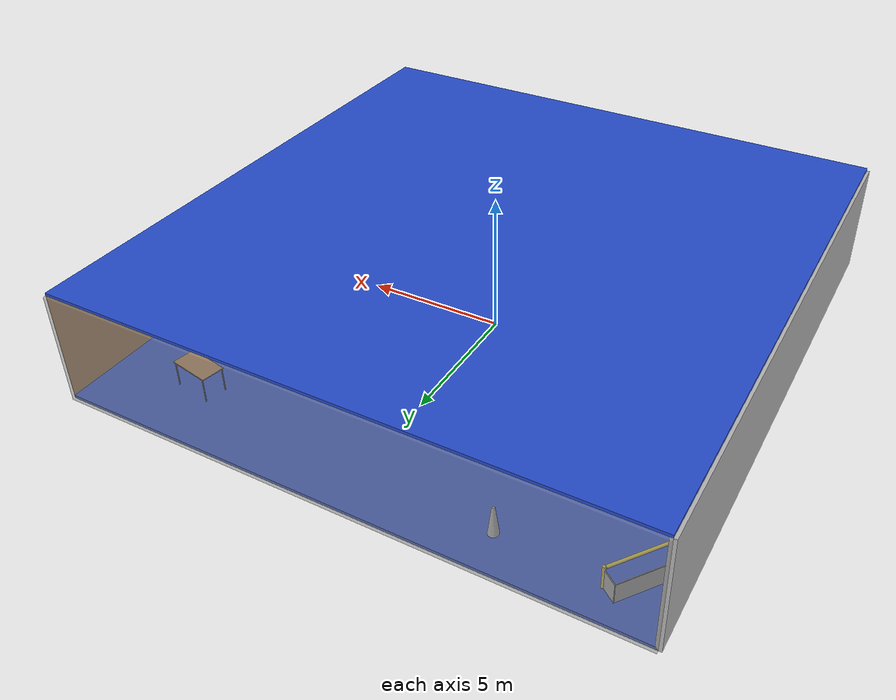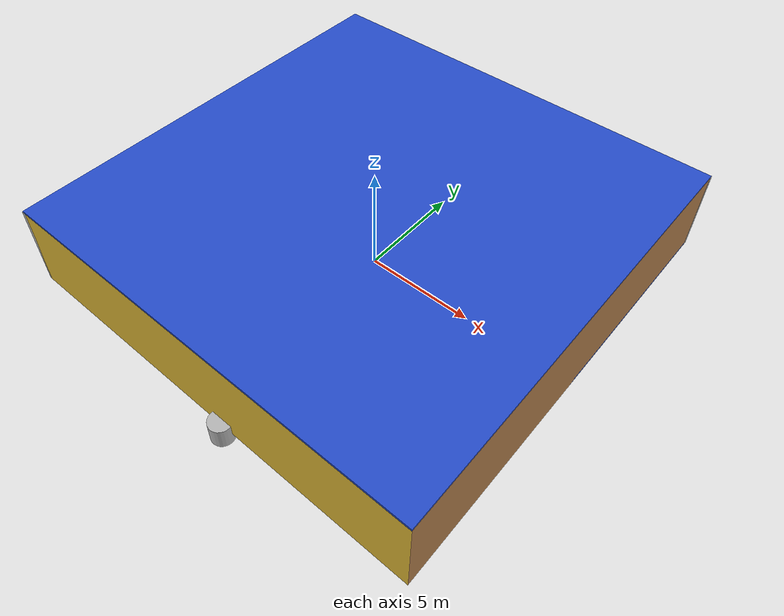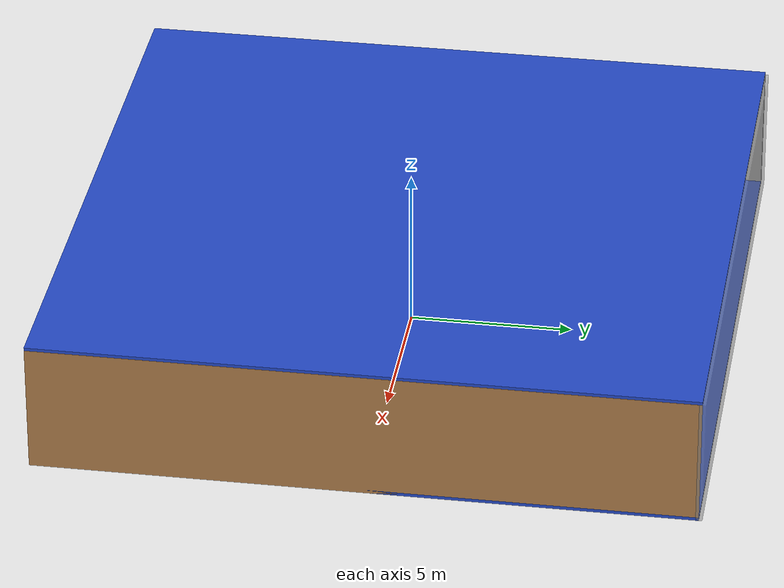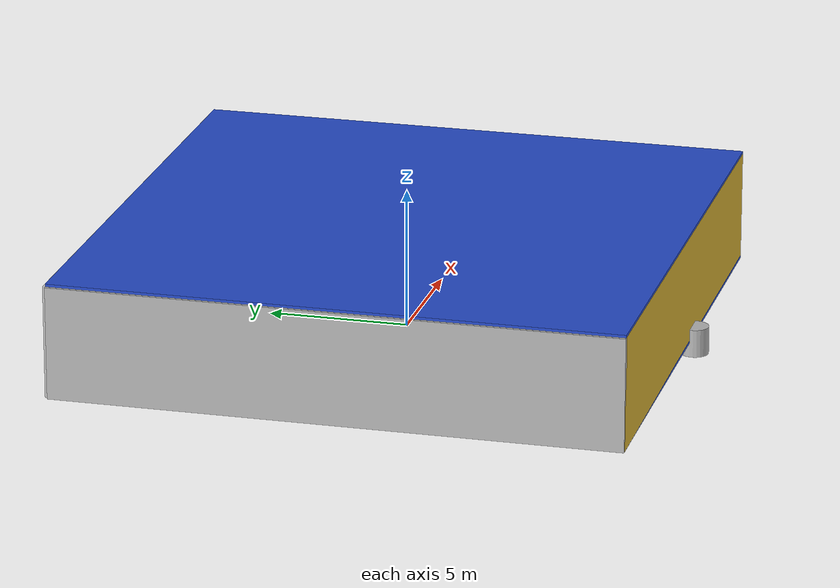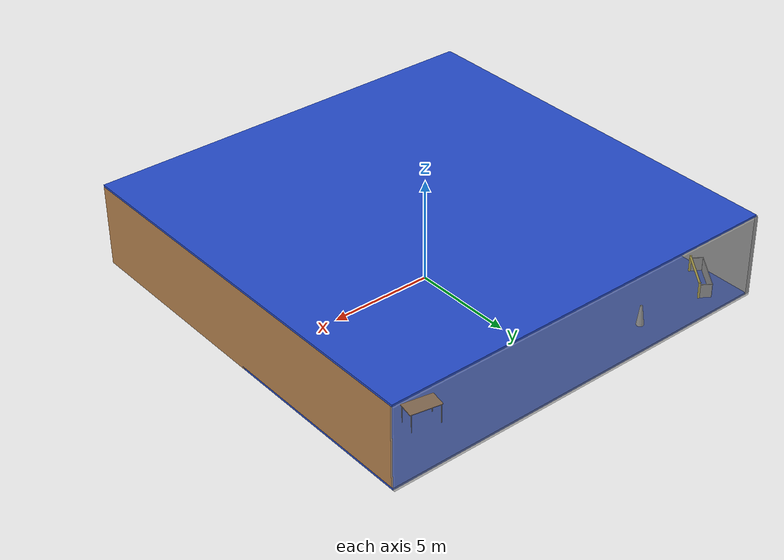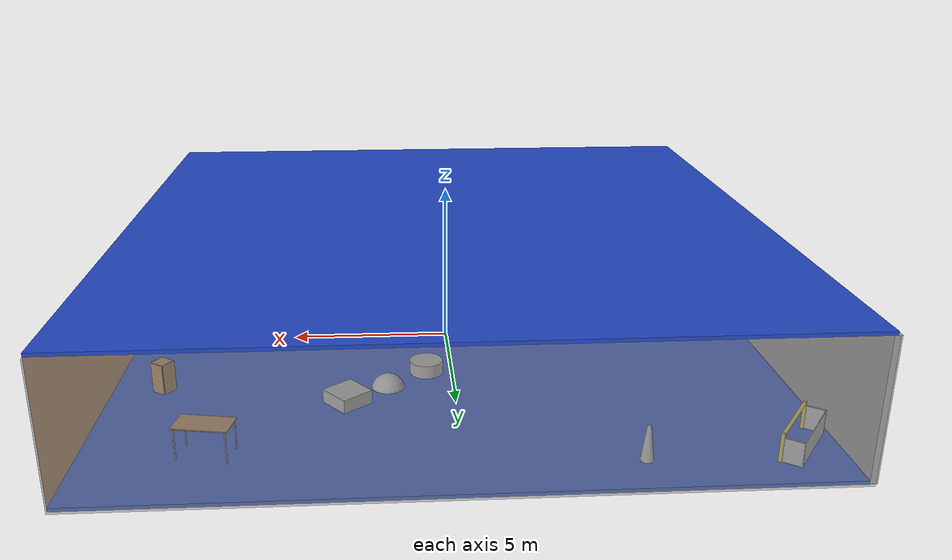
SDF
<sdf version="1.4">
 <world name="default">
  <physics type="ode">
   <max_step_size>0.001</max_step_size>
   <real_time_factor>1</real_time_factor>
   <real_time_update_rate>1000</real_time_update_rate>
   <gravity>0 0 -9.8</gravity>
  </physics>
  <scene><ambient>0.4 0.4 0.4 1</ambient><background>0.7 0.7 0.7 1</background><shadows>1</shadows></scene>
  <model name="Surrounding">
   <static>1</static>
   <link name="Ceiling">
    <collision name="Ceiling_Collision"><geometry><box><size>20 20 0.1</size></box></geometry></collision>
    <visual name="Ceiling_Visual">
     <geometry><box><size>20 20 0.1</size></box></geometry>
     <material>
      <script><uri>file://media/materials/scripts/gazebo.material</uri><name>Gazebo/Blue</name></script>
     </material>
    </visual>
    <pose>0 0 4.05 0 0 0</pose>
   </link>
   <link name="Wall_South">
    <collision name="Wall_South_Collision">
     <geometry><box><size>20 0 4</size></box></geometry>
     <pose>0 0 2 0 -0 0</pose>
    </collision>
    <visual name="Wall_South_Visual">
     <pose>0 0 2 0 -0 0</pose>
     <geometry><box><size>20 0 4</size></box></geometry>
     <material>
      <script><uri>file://media/materials/scripts/gazebo.material</uri><name>Gazebo/Gold</name></script>
     </material>
    </visual>
    <velocity_decay><linear>0</linear><angular>0</angular></velocity_decay>
    <pose>0 -10 0 0 -0 0</pose>
   </link>
   <link name="Wall_East">
    <collision name="Wall_21_Collision">
     <geometry><box><size>20 0 4</size></box></geometry>
     <pose>0 0 2 0 -0 0</pose>
    </collision>
    <visual name="Wall_21_Visual">
     <pose>0 0 2 0 -0 0</pose>
     <geometry><box><size>20 0 4</size></box></geometry>
     <material>
      <script><uri>file://media/materials/scripts/gazebo.material</uri><name>Gazebo/Wood</name></script>
     </material>
    </visual>
    <velocity_decay><linear>0</linear><angular>0</angular></velocity_decay>
    <pose>10 0 0 0 -0 1.5708</pose>
   </link>
   <link name="Wall_North">
    <collision name="Wall_22_Collision">
     <geometry><box><size>20 0.2 4</size></box></geometry>
     <pose>0 0 2 0 -0 0</pose>
    </collision>
    <visual name="Wall_22_Visual">
     <pose>0 0 2 0 -0 0</pose>
     <geometry><box><size>20 0.2 4</size></box></geometry>
     <material>
      <script><uri>file://media/materials/scripts/gazebo.material</uri><name>Gazebo/GreyTransparent</name></script>
     </material>
    </visual>
    <velocity_decay><linear>0</linear><angular>0</angular></velocity_decay>
    <pose>0 10 0 0 -0 0</pose>
   </link>
   <link name="Wall_West">
    <collision name="Wall_23_Collision">
     <geometry><box><size>20 0.2 4</size></box></geometry>
     <pose>0 0 2 0 -0 0</pose>
    </collision>
    <visual name="Wall_23_Visual">
     <pose>0 0 2 0 -0 0</pose>
     <geometry><box><size>20 0.2 4</size></box></geometry>
     <material>
      <script><uri>file://media/materials/scripts/gazebo.material</uri><name>Gazebo/PioneerBody</name></script>
     </material>
    </visual>
    <velocity_decay><linear>0</linear><angular>0</angular></velocity_decay>
    <pose>-10 0 0 0 0 -1.5708</pose>
   </link>
   <link name="Ground_link">
    <collision name="collision">
     <pose>0 0 .05 0 -0 0</pose>
     <geometry><box><size>20 20 0.1</size></box></geometry>
    </collision>
    <visual name="visual">
     <pose>0 0 .05 0 -0 0</pose>
     <geometry><box><size>20 20 0.1</size></box></geometry>
     <material>
      <script><uri>file://media/materials/scripts/gazebo.material</uri><name>Gazebo/BlueGlow</name></script>
     </material>
    </visual>
   </link>
   <static>1</static>
  </model>
  <spherical_coordinates>
   <surface_model>EARTH_WGS84</surface_model>
   <latitude_deg>0</latitude_deg>
   <longitude_deg>0</longitude_deg>
   <elevation>0</elevation>
   <heading_deg>0</heading_deg>
  </spherical_coordinates>
  <light name="lightball_0" type="diffuse">
   <diffuse>0.8 0.8 0.8 1</diffuse>
   <specular>0.2 0.2 0.2 1</specular>
   <attenuation>
    <range>100</range>
    <constant>0.7</constant>
    <linear>0.01</linear>
    <quadratic>0.001</quadratic>
   </attenuation>
   <direction>-0.5 0.1 -0.9</direction>
   <pose>-5.59700836795 0.626032234926 3.66191324475 0 0 0</pose>
  </light>
  <light name="lightball_1" type="diffuse">
   <diffuse>0.8 0.8 0.8 1</diffuse>
   <specular>0.2 0.2 0.2 1</specular>
   <attenuation>
    <range>100</range>
    <constant>0.7</constant>
    <linear>0.01</linear>
    <quadratic>0.001</quadratic>
   </attenuation>
   <direction>-0.5 0.1 -0.9</direction>
   <pose>9.02664751498 9.05347765151 3.84397542428 0 0 0</pose>
  </light>
  <light name="lightball_2" type="diffuse">
   <diffuse>0.8 0.8 0.8 1</diffuse>
   <specular>0.2 0.2 0.2 1</specular>
   <attenuation>
    <range>100</range>
    <constant>0.7</constant>
    <linear>0.01</linear>
    <quadratic>0.001</quadratic>
   </attenuation>
   <direction>-0.5 0.1 -0.9</direction>
   <pose>5.7213927226 -7.82872720752 2.5563557867 0 0 0</pose>
  </light>
  <light name="lightball_3" type="diffuse">
   <diffuse>0.8 0.8 0.8 1</diffuse>
   <specular>0.2 0.2 0.2 1</specular>
   <attenuation>
    <range>100</range>
    <constant>0.7</constant>
    <linear>0.01</linear>
    <quadratic>0.001</quadratic>
   </attenuation>
   <direction>-0.5 0.1 -0.9</direction>
   <pose>0.339997044067 -9.44505210884 3.62707724063 0 0 0</pose>
  </light>
  <light name="lightball_4" type="diffuse">
   <diffuse>0.8 0.8 0.8 1</diffuse>
   <specular>0.2 0.2 0.2 1</specular>
   <attenuation>
    <range>100</range>
    <constant>0.7</constant>
    <linear>0.01</linear>
    <quadratic>0.001</quadratic>
   </attenuation>
   <direction>-0.5 0.1 -0.9</direction>
   <pose>3.14395380802 3.1817193486 3.75739755223 0 0 0</pose>
  </light>
  <light name="lightball_5" type="diffuse">
   <diffuse>0.8 0.8 0.8 1</diffuse>
   <specular>0.2 0.2 0.2 1</specular>
   <attenuation>
    <range>100</range>
    <constant>0.7</constant>
    <linear>0.01</linear>
    <quadratic>0.001</quadratic>
   </attenuation>
   <direction>-0.5 0.1 -0.9</direction>
   <pose>2.25392600653 -4.07778272125 3.22393559349 0 0 0</pose>
  </light>
  <include><uri>model://table</uri><pose>-8.35748346379 -3.85569490936 0 0 0 0.489981527627</pose></include>
  <include>
   <uri>model://robocup_3Dsim_goal</uri>
   <pose>-8.39831405939 -2.05394725607 0 0 0 0.0625550736789</pose>
  </include>
  <include>
   <uri>model://robocup_3Dsim_goal</uri>
   <pose>-8.66237500134 8.09960643175 0 0 0 2.50078345647</pose>
  </include>
  <include>
   <uri>model://construction_cone</uri>
   <pose>-4.64904454827 8.67784905933 0 0 0 0.597615957941</pose>
  </include>
  <include>
   <uri>model://textured_shapes</uri>
   <pose>1.43802807275 -8.61308519528 0 0 0 2.95666133879</pose>
  </include>
  <include>
   <uri>model://textured_shapes</uri>
   <pose>1.6281980404 -4.76300689565 0 0 0 2.07527217394</pose>
  </include>
  <include>
   <uri>model://textured_shapes</uri>
   <pose>1.94641678667 4.06363768534 0 0 0 2.25239619624</pose>
  </include>
  <include>
   <uri>model://robocup_3Dsim_goal</uri>
   <pose>3.6553559113 -5.25238394879 0 0 0 1.25134519695</pose>
  </include>
  <include><uri>model://cabinet</uri><pose>8.2560945252 0.775042979834 0 0 0 0.428614143211</pose></include>
  <include><uri>model://cabinet</uri><pose>8.50535886809 3.88804389549 0 0 0 0.963209972151</pose></include>
  <include><uri>model://table</uri><pose>6.66636947656 7.71046976572 0 0 0 2.95852616163</pose></include>
 </world>
</sdf>

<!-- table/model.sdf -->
<sdf version="1.5">
  <model name="table">
    <static>true</static>
    <link name="link">
      <collision name="surface">
        <pose>0 0 1.0 0 0 0</pose>
        <geometry>
          <box>
            <size>1.5 0.8 0.03</size>
          </box>
        </geometry>
        <surface>
          <friction>
            <ode>
              <mu>0.6</mu>
              <mu2>0.6</mu2>
            </ode>
          </friction>
        </surface>
      </collision>
      <visual name="visual1">
        <pose>0 0 1.0 0 0 0</pose>
        <geometry>
          <box>
            <size>1.5 0.8 0.03</size>
          </box>
        </geometry>
        <material>
          <script>
            <uri>model://media/materials/scripts/gazebo.material</uri>
            <name>Gazebo/Wood</name>
          </script>
        </material>
      </visual>
      <collision name="front_left_leg">
        <pose>0.68 0.38 0.5 0 0 0</pose>
        <geometry>
          <cylinder>
            <radius>0.02</radius>
            <length>1.0</length>
          </cylinder>
        </geometry>
      </collision>
      <visual name="front_left_leg">
        <pose>0.68 0.38 0.5 0 0 0</pose>
        <geometry>
          <cylinder>
            <radius>0.02</radius>
            <length>1.0</length>
          </cylinder>
        </geometry>
        <material>
          <script>
            <uri>model://media/materials/scripts/gazebo.material</uri>
            <name>Gazebo/Grey</name>
          </script>
        </material>
      </visual>
      <collision name="front_right_leg">
        <pose>0.68 -0.38 0.5 0 0 0</pose>
        <geometry>
          <cylinder>
            <radius>0.02</radius>
            <length>1.0</length>
          </cylinder>
        </geometry>
      </collision>
      <visual name="front_right_leg">
        <pose>0.68 -0.38 0.5 0 0 0</pose>
        <geometry>
          <cylinder>
            <radius>0.02</radius>
            <length>1.0</length>
          </cylinder>
        </geometry>
        <material>
          <script>
            <uri>model://media/materials/scripts/gazebo.material</uri>
            <name>Gazebo/Grey</name>
          </script>
        </material>
      </visual>
      <collision name="back_right_leg">
        <pose>-0.68 -0.38 0.5 0 0 0</pose>
        <geometry>
          <cylinder>
            <radius>0.02</radius>
            <length>1.0</length>
          </cylinder>
        </geometry>
      </collision>
      <visual name="back_right_leg">
        <pose>-0.68 -0.38 0.5 0 0 0</pose>
        <geometry>
          <cylinder>
            <radius>0.02</radius>
            <length>1.0</length>
          </cylinder>
        </geometry>
        <material>
          <script>
            <uri>model://media/materials/scripts/gazebo.material</uri>
            <name>Gazebo/Grey</name>
          </script>
        </material>
      </visual>
      <collision name="back_left_leg">
        <pose>-0.68 0.38 0.5 0 0 0</pose>
        <geometry>
          <cylinder>
            <radius>0.02</radius>
            <length>1.0</length>
          </cylinder>
        </geometry>
      </collision>
      <visual name="back_left_leg">
        <pose>-0.68 0.38 0.5 0 0 0</pose>
        <geometry>
          <cylinder>
            <radius>0.02</radius>
            <length>1.0</length>
          </cylinder>
        </geometry>
        <material>
          <script>
            <uri>model://media/materials/scripts/gazebo.material</uri>
            <name>Gazebo/Grey</name>
          </script>
        </material>
      </visual>
    </link>
  </model>
</sdf>

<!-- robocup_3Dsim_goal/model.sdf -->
<sdf version="1.5">
  <model name="robocup_3d_goal">
    <static>true</static>
    <link name="left_post">
      <pose>0 1.05 0.45 0 0 0</pose>
      <collision name="collision">
        <geometry>
          <cylinder>
            <radius>0.05</radius>
            <length>0.9</length>
          </cylinder>
        </geometry>
      </collision>
      <visual name="visual">
        <geometry>
          <cylinder>
            <radius>0.05</radius>
            <length>0.9</length>
          </cylinder>
        </geometry>
        <material>
          <script>
            <uri>file://media/materials/scripts/gazebo.material</uri>
            <name>Gazebo/ZincYellow</name>
          </script>
        </material>
      </visual>
    </link>
    <link name="left_support_horiz_lower">
      <pose>0.30 1.05 0.01 0 0 0</pose>
      <collision name="collision">
        <geometry>
          <box>
            <size>0.50 0.02 0.02</size>
          </box>
        </geometry>
      </collision>
      <visual name="visual">
        <geometry>
          <box>
            <size>0.50 0.02 0.02</size>
          </box>
        </geometry>
        <material>
          <script>
            <uri>file://media/materials/scripts/gazebo.material</uri>
            <name>Gazebo/White</name>
          </script>
        </material>
      </visual>
    </link>
    <link name="left_support_horiz_upper">
      <pose>0.30 1.05 0.79 0 0 0</pose>
      <collision name="collision">
        <geometry>
          <box>
            <size>0.50 0.02 0.02</size>
          </box>
        </geometry>
      </collision>
      <visual name="visual">
        <geometry>
          <box>
            <size>0.50 0.02 0.02</size>
          </box>
        </geometry>
        <material>
          <script>
            <uri>file://media/materials/scripts/gazebo.material</uri>
            <name>Gazebo/White</name>
          </script>
        </material>
      </visual>
    </link>
    <link name="left_support_vertical">
      <pose>0.56 1.05 0.4 0 1.5708 0</pose>
      <collision name="collision">
        <geometry>
          <box>
            <size>0.80 0.02 0.02</size>
          </box>
        </geometry>
      </collision>
      <visual name="visual">
        <geometry>
          <box>
            <size>0.80 0.02 0.02</size>
          </box>
        </geometry>
        <material>
          <script>
            <uri>file://media/materials/scripts/gazebo.material</uri>
            <name>Gazebo/White</name>
          </script>
        </material>
      </visual>
    </link>
    <link name="right_support_horiz_lower">
      <pose>0.30 -1.05 0.01 0 0 0</pose>
      <collision name="collision">
        <geometry>
          <box>
            <size>0.50 0.02 0.02</size>
          </box>
        </geometry>
      </collision>
      <visual name="visual">
        <geometry>
          <box>
            <size>0.50 0.02 0.02</size>
          </box>
        </geometry>
        <material>
          <script>
            <uri>file://media/materials/scripts/gazebo.material</uri>
            <name>Gazebo/White</name>
          </script>
        </material>
      </visual>
    </link>
    <link name="right_support_horiz_upper">
      <pose>0.30 -1.05 0.79 0 0 0</pose>
      <collision name="collision">
        <geometry>
          <box>
            <size>0.50 0.02 0.02</size>
          </box>
        </geometry>
      </collision>
      <visual name="visual">
        <geometry>
          <box>
            <size>0.50 0.02 0.02</size>
          </box>
        </geometry>
        <material>
          <script>
            <uri>file://media/materials/scripts/gazebo.material</uri>
            <name>Gazebo/White</name>
          </script>
        </material>
      </visual>
    </link>
    <link name="right_support_vertical">
      <pose>0.56 -1.05 0.4 0 1.5708 0</pose>
      <collision name="collision">
        <geometry>
          <box>
            <size>0.80 0.02 0.02</size>
          </box>
        </geometry>
      </collision>
      <visual name="visual">
        <geometry>
          <box>
            <size>0.80 0.02 0.02</size>
          </box>
        </geometry>
        <material>
          <script>
            <uri>file://media/materials/scripts/gazebo.material</uri>
            <name>Gazebo/White</name>
          </script>
        </material>
      </visual>
    </link>
    <link name="center_support_horiz_lower">
      <pose>0.56 0 0.01 0 1.5708 0</pose>
      <collision name="collision">
        <geometry>
          <box>
            <size>0.02 2.08 0.02</size>
          </box>
        </geometry>
      </collision>
      <visual name="visual">
        <geometry>
          <box>
            <size>0.02 2.08 0.02</size>
          </box>
        </geometry>
        <material>
          <script>
            <uri>file://media/materials/scripts/gazebo.material</uri>
            <name>Gazebo/White</name>
          </script>
        </material>
      </visual>
    </link>
    <link name="center_support_horiz_upper">
      <pose>0.56 0 0.79 0 1.5708 0</pose>
      <collision name="collision">
        <geometry>
          <box>
            <size>0.02 2.08 0.02</size>
          </box>
        </geometry>
      </collision>
      <visual name="visual">
        <geometry>
          <box>
            <size>0.02 2.08 0.02</size>
          </box>
        </geometry>
        <material>
          <script>
            <uri>file://media/materials/scripts/gazebo.material</uri>
            <name>Gazebo/White</name>
          </script>
        </material>
      </visual>
    </link>
    <link name="right_post">
      <pose>0 -1.05 0.45 0 0 0</pose>
      <collision name="collision">
        <geometry>
          <cylinder>
            <radius>0.05</radius>
            <length>0.9</length>
          </cylinder>
        </geometry>
      </collision>
      <visual name="visual">
        <geometry>
          <cylinder>
            <radius>0.05</radius>
            <length>0.9</length>
          </cylinder>
        </geometry>
        <material>
          <script>
            <uri>file://media/materials/scripts/gazebo.material</uri>
            <name>Gazebo/ZincYellow</name>
          </script>
        </material>
      </visual>
    </link>
    <link name="crossbar">
      <pose>0 0 0.85 1.57 1.57 0</pose>
      <collision name="collision">
        <geometry>
          <cylinder>
            <radius>0.05</radius>
            <length>2.0</length>
          </cylinder>
        </geometry>
      </collision>
      <visual name="visual">
        <geometry>
          <cylinder>
            <radius>0.05</radius>
            <length>2.0</length>
          </cylinder>
        </geometry>
        <material>
          <script>
            <uri>file://media/materials/scripts/gazebo.material</uri>
            <name>Gazebo/ZincYellow</name>
          </script>
        </material>
      </visual>
    </link>
    <link name="center_net">
      <pose>0.56 0 0.40 0 0 0</pose>
      <collision name="collision">
        <geometry>
          <box>
            <size>0.01 2.1 0.80</size>
          </box>
        </geometry>
      </collision>
      <visual name="visual">
        <geometry>
          <box>
            <size>0.01 2.1 0.80</size>
          </box>
        </geometry>
        <material>
          <script>
            <uri>model://../model_source/models/robocup09_spl_field/materials/scripts/</uri>
            <uri>model://../model_source/models/robocup09_spl_field/materials/textures/</uri>
            <name>RoboCup/Net</name>
          </script>
        </material>
      </visual>
    </link>
    <link name="left_net">
      <pose>0.30 1.05 0.40 0 0 0</pose>
      <collision name="collision">
        <geometry>
          <box>
            <size>0.50 0.01 0.76</size>
          </box>
        </geometry>
      </collision>
      <visual name="visual">
        <geometry>
          <box>
            <size>0.50 0.01 0.76</size>
          </box>
        </geometry>
        <material>
          <script>
            <uri>model://../model_source/models/robocup09_spl_field/materials/scripts/</uri>
            <uri>model://../model_source/models/robocup09_spl_field/materials/textures/</uri>
            <name>RoboCup/Net</name>
          </script>
        </material>
      </visual>
    </link>
    <link name="right_net">
      <pose>0.30 -1.05 0.40 0 0 0</pose>
      <collision name="collision">
        <geometry>
          <box>
            <size>0.50 0.01 0.76</size>
          </box>
        </geometry>
      </collision>
      <visual name="visual">
        <geometry>
          <box>
            <size>0.50 0.01 0.76</size>
          </box>
        </geometry>
        <material>
          <script>
            <uri>model://../model_source/models/robocup09_spl_field/materials/scripts/</uri>
            <uri>model://../model_source/models/robocup09_spl_field/materials/textures/</uri>
            <name>RoboCup/Net</name>
          </script>
        </material>
      </visual>
    </link>
  </model>
</sdf>

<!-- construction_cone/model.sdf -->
<sdf version="1.5">
  <model name="Construction Cone">
    <link name="link">
      <collision name="collision">
        <geometry>
          <mesh>
            <scale>10 10 10</scale>
            <uri>file://isr-testbed/construction_cone/meshes/construction_cone.dae</uri>
          </mesh>
        </geometry>
      </collision>
      <visual name="visual">
        <geometry>
          <mesh>
            <scale>10 10 10</scale>
            <uri>file://isr-testbed/construction_cone/meshes/construction_cone.dae</uri>
          </mesh>
        </geometry>
      </visual>
    </link>
  </model>
</sdf>

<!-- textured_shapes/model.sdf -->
<sdf version="1.6">
  <model name="textured_shapes">
    <pose>0 0 0.5 0 0 0</pose>
    <link name="box">
      <pose>0 -1.5 0 0 0 0</pose>
      <collision name="collision">
        <geometry>
          <box>
            <size>1 1 1</size>
          </box>
        </geometry>
      </collision>
      <visual name="visual">
        <geometry>
          <box>
            <size>1 1 1</size>
          </box>
        </geometry>
        <material>
          <script>
            <uri>model://../model_source/models/textured_shapes/materials/scripts</uri>
            <uri>model://../model_source/models/textured_shapes/materials/textures</uri>
            <name>TexturedShape/Squares</name>
          </script>
        </material>
      </visual>
    </link>
    <link name="sphere">
      <collision name="collision">
        <geometry>
          <sphere>
            <radius>0.5</radius>
          </sphere>
        </geometry>
      </collision>
      <visual name="visual">
        <geometry>
          <sphere>
            <radius>0.5</radius>
          </sphere>
        </geometry>
        <material>
          <script>
            <uri>model://../model_source/models/textured_shapes/materials/scripts</uri>
            <uri>model://../model_source/models/textured_shapes/materials/textures</uri>
            <name>TexturedShape/Squares</name>
          </script>
        </material>
      </visual>
    </link>
    <link name="cylinder">
      <pose>0 1.5 0 0 0 0</pose>
      <collision name="collision">
        <geometry>
          <cylinder>
            <radius>0.5</radius>
            <length>1</length>
          </cylinder>
        </geometry>
      </collision>
      <visual name="visual">
        <geometry>
          <cylinder>
            <radius>0.5</radius>
            <length>1</length>
          </cylinder>
        </geometry>
        <material>
          <script>
            <uri>model://../model_source/models/textured_shapes/materials/scripts</uri>
            <uri>model://../model_source/models/textured_shapes/materials/textures</uri>
            <name>TexturedShape/Squares</name>
          </script>
        </material>
      </visual>
    </link>
  </model>
</sdf>

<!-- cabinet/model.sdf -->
<sdf version="1.5">
  <model name="cabinet">
    <static>true</static>
    <link name="cabinet_bottom_plate">
      <inertial>
        <pose>0 0 -1 0 0 0</pose>
        <inertia>
          <ixx>2.050000</ixx>
          <ixy>0</ixy>
          <ixz>0</ixz>
          <iyy>2.050000</iyy>
          <iyz>0</iyz>
          <izz>2.050000</izz>
        </inertia>
        <mass>25.000000</mass>
      </inertial>
      <collision name="cabinet_bottom_plate_geom">
        <pose>0 0 0.010000 0 0 0</pose>
        <geometry>
          <box>
            <size>0.450000 0.450000 0.020000</size>
          </box>
        </geometry>
      </collision>
      <visual name="cabinet_bottom_plate_geom_visual">
        <pose>0 0 0.010000 0 0 0</pose>
        <geometry>
          <box>
            <size>0.450000 0.450000 0.020000</size>
          </box>
        </geometry>
        <material>
          <script>
            <uri>model://media/materials/scripts/gazebo.material</uri>
            <name>Gazebo/Wood</name>
          </script>
        </material>
      </visual>
      <collision name="cabinet_bottom_plate_geom_cabinet_back_plate">
        <pose>0.235000 0 0.510000 0 0 0</pose>
        <geometry>
          <box>
            <size>0.020000 0.450000 1.020000</size>
          </box>
        </geometry>
      </collision>
      <visual name="cabinet_bottom_plate_geom_cabinet_back_plate_visual">
        <pose>0.235000 0 0.510000 0 0 0</pose>
        <geometry>
          <box>
            <size>0.020000 0.450000 1.020000</size>
          </box>
        </geometry>
        <material>
          <script>
            <uri>model://media/materials/scripts/gazebo.material</uri>
            <name>Gazebo/Wood</name>
          </script>
        </material>
      </visual>
      <collision name="cabinet_bottom_plate_geom_cabinet_left_plate">
        <pose>0 0.235000 0.510000 0 0 0</pose>
        <geometry>
          <box>
            <size>0.450000 0.020000 1.020000</size>
          </box>
        </geometry>
      </collision>
      <visual name="cabinet_bottom_plate_geom_cabinet_left_plate_visual">
        <pose>0 0.235000 0.510000 0 0 0</pose>
        <geometry>
          <box>
            <size>0.450000 0.020000 1.020000</size>
          </box>
        </geometry>
        <material>
          <script>
            <uri>model://media/materials/scripts/gazebo.material</uri>
            <name>Gazebo/Wood</name>
          </script>
        </material>
      </visual>
      <collision name="cabinet_bottom_plate_geom_cabinet_middle_plate">
        <pose>0 0 0.510000 0 0 0</pose>
        <geometry>
          <box>
            <size>0.450000 0.450000 0.020000</size>
          </box>
        </geometry>
      </collision>
      <visual name="cabinet_bottom_plate_geom_cabinet_middle_plate_visual">
        <pose>0 0 0.510000 0 0 0</pose>
        <geometry>
          <box>
            <size>0.450000 0.450000 0.020000</size>
          </box>
        </geometry>
        <material>
          <script>
            <uri>model://media/materials/scripts/gazebo.material</uri>
            <name>Gazebo/Wood</name>
          </script>
        </material>
      </visual>
      <collision name="cabinet_bottom_plate_geom_cabinet_right_plate">
        <pose>0 -0.235000 0.510000 0 0 0</pose>
        <geometry>
          <box>
            <size>0.450000 0.020000 1.020000</size>
          </box>
        </geometry>
      </collision>
      <visual name="cabinet_bottom_plate_geom_cabinet_right_plate_visual">
        <pose>0 -0.235000 0.510000 0 0 0</pose>
        <geometry>
          <box>
            <size>0.450000 0.020000 1.020000</size>
          </box>
        </geometry>
        <material>
          <script>
            <uri>model://media/materials/scripts/gazebo.material</uri>
            <name>Gazebo/Wood</name>
          </script>
        </material>
      </visual>
      <collision name="cabinet_bottom_plate_geom_cabinet_top_plate">
        <pose>0 0 1.010000 0 0 0</pose>
        <geometry>
          <box>
            <size>0.450000 0.450000 0.020000</size>
          </box>
        </geometry>
      </collision>
      <visual name="cabinet_bottom_plate_geom_cabinet_top_plate_visual">
        <pose>0 0 1.010000 0 0 0</pose>
        <geometry>
          <box>
            <size>0.450000 0.450000 0.020000</size>
          </box>
        </geometry>
        <material>
          <script>
            <uri>model://media/materials/scripts/gazebo.material</uri>
            <name>Gazebo/Wood</name>
          </script>
        </material>
      </visual>
    </link>
  </model>
</sdf>
